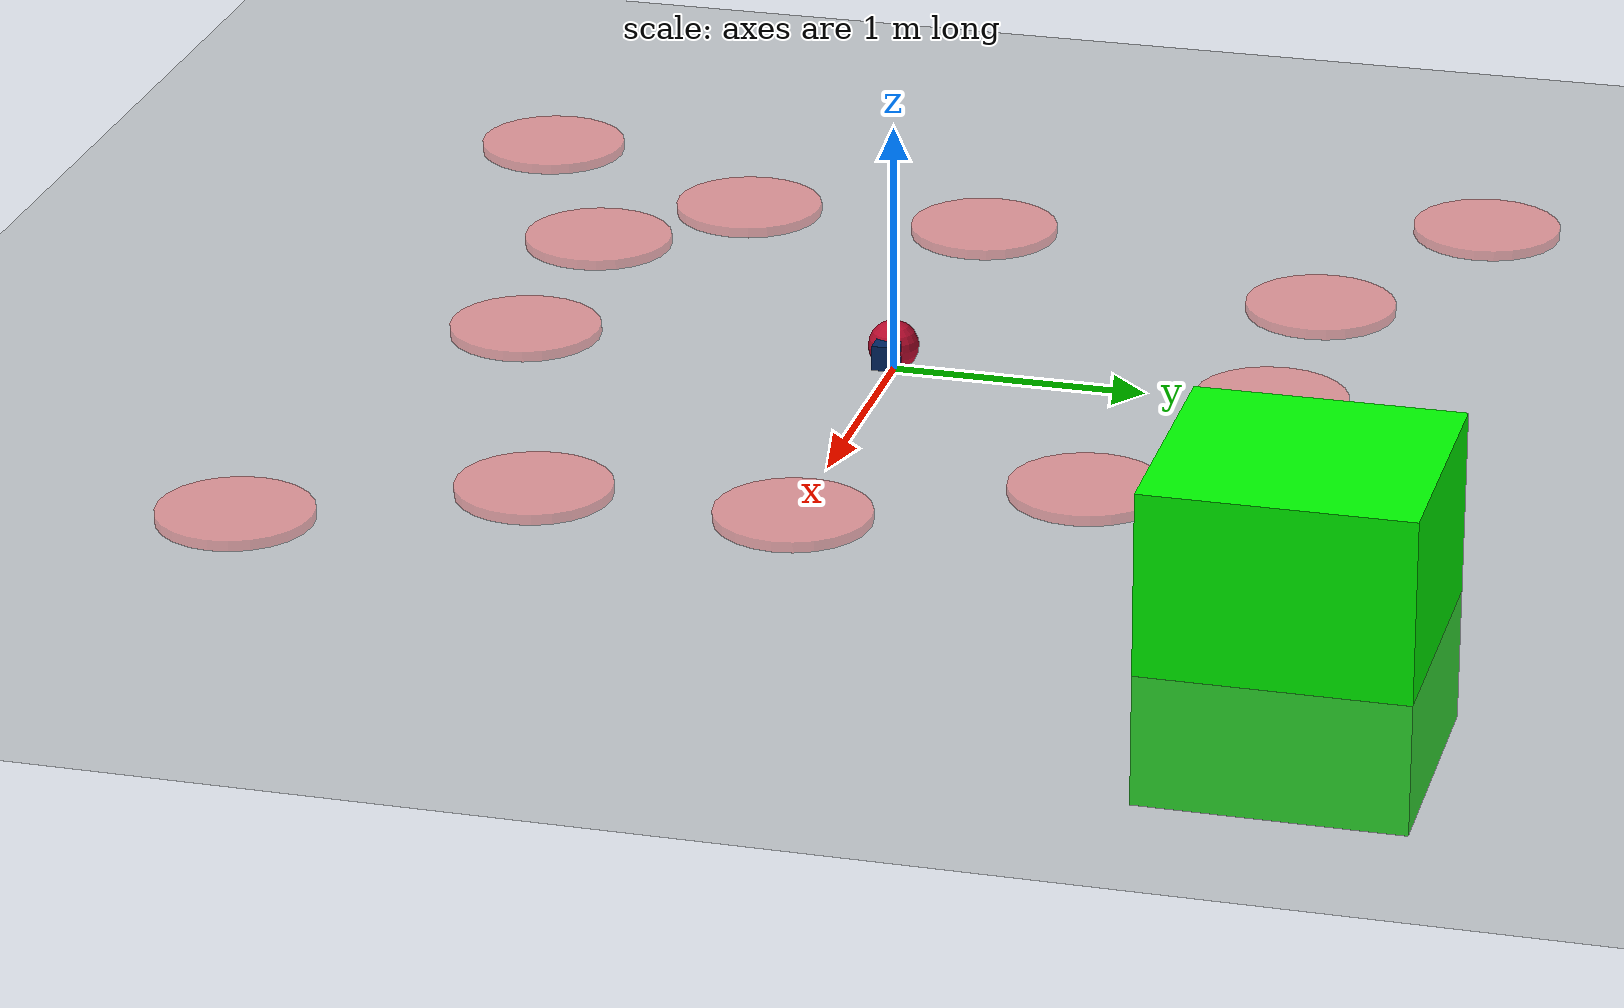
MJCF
<mujoco model="point_hazard_goal">
    <include file="point.xml"/>

    <asset>
        <material name="hazard" rgba="0.9 0.3 0.3 1"/>
        <material name="goal" rgba="0.3 0.9 0.3 1"/>
        <material name="hazard_cylinder" rgba="0.9 0.3 0.3 0.5"/>
    </asset>

    <worldbody>
        <!-- Goal (green box) -->
        <body name="goal" pos="2 2 0.09" mocap="true">
            <geom type="box" name="goal" size="0.5 0.5 0.6" condim="3"
                  friction="1 .03 .003" rgba="0 1 0 1" contype="2" conaffinity="1" solref="0.01 1"/>
        </body>

        <!-- Hazards (semi-transparent flat cylinders with no collision) -->
        <body name="hazard1" pos="-2 2 0.02" mocap="true">
            <geom type="cylinder" name="hazard1" size="0.3 0.02" rgba="0.9 0.3 0.3 0.5" contype="0" conaffinity="0"/>
        </body>

        <body name="hazard2" pos="2 -2 0.02" mocap="true">
            <geom type="cylinder" name="hazard2" size="0.3 0.02" rgba="0.9 0.3 0.3 0.5" contype="0" conaffinity="0"/>
        </body>

        <body name="hazard3" pos="-2 -2 0.02" mocap="true">
            <geom type="cylinder" name="hazard3" size="0.3 0.02" rgba="0.9 0.3 0.3 0.5" contype="0" conaffinity="0"/>
        </body>

        <body name="hazard4" pos="0 1.5 0.02" mocap="true">
            <geom type="cylinder" name="hazard4" size="0.3 0.02" rgba="0.9 0.3 0.3 0.5" contype="0" conaffinity="0"/>
        </body>

        <body name="hazard5" pos="1.5 0 0.02" mocap="true">
            <geom type="cylinder" name="hazard5" size="0.3 0.02" rgba="0.9 0.3 0.3 0.5" contype="0" conaffinity="0"/>
        </body>

        <body name="hazard6" pos="-1.5 0 0.02" mocap="true">
            <geom type="cylinder" name="hazard6" size="0.3 0.02" rgba="0.9 0.3 0.3 0.5" contype="0" conaffinity="0"/>
        </body>

        <body name="hazard7" pos="0 -1.5 0.02" mocap="true">
            <geom type="cylinder" name="hazard7" size="0.3 0.02" rgba="0.9 0.3 0.3 0.5" contype="0" conaffinity="0"/>
        </body>

        <body name="hazard8" pos="1 1 0.02" mocap="true">
            <geom type="cylinder" name="hazard8" size="0.3 0.02" rgba="0.9 0.3 0.3 0.5" contype="0" conaffinity="0"/>
        </body>

        <body name="hazard9" pos="-1 1.5 0.02" mocap="true">
            <geom type="cylinder" name="hazard9" size="0.3 0.02" rgba="0.9 0.3 0.3 0.5" contype="0" conaffinity="0"/>
        </body>

        <body name="hazard10" pos="1.5 -1 0.02" mocap="true">
            <geom type="cylinder" name="hazard10" size="0.3 0.02" rgba="0.9 0.3 0.3 0.5" contype="0" conaffinity="0"/>
        </body>

        <body name="hazard11" pos="-1.5 -1 0.02" mocap="true">
            <geom type="cylinder" name="hazard11" size="0.3 0.02" rgba="0.9 0.3 0.3 0.5" contype="0" conaffinity="0"/>
        </body>

        <body name="hazard12" pos="-1 -1.5 0.02" mocap="true">
            <geom type="cylinder" name="hazard12" size="0.3 0.02" rgba="0.9 0.3 0.3 0.5" contype="0" conaffinity="0"/>
        </body>
    </worldbody>
</mujoco>

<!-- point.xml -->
<mujoco>
  <size njmax="3000" nconmax="1000"/>
  <option timestep="0.002"/>
  <visual>
    <headlight ambient="0.5 0.5 0.5" diffuse="0.9 0.9 0.9" specular="0.2 0.2 0.2"/>
    <map znear="0.01" zfar="30"/>
  </visual>
  <statistic meansize="0.23" extent="3.96"/>
  <default>
    <geom condim="6" density="1"/>
    <joint damping=".001"/>
    <motor ctrlrange="-1 1" ctrllimited="true" forcerange="-.05 .05" forcelimited="true"/>
    <velocity ctrlrange="-1 1" ctrllimited="true" forcerange="-.05 .05" forcelimited="true"/>
    <site size="0.032" type="sphere"/>
  </default>
  <worldbody>
    <geom name="floor" type="plane" size="10 10 0.1" condim="6" />
    <camera name="fixedfar" pos="0 -5 5" zaxis="0 -1 1" mode="fixed"/>
    <body name="agent" pos="0 0 .1">
      <camera name="vision" pos="0 0 .15" xyaxes="0 -1 0 .4 0 1" fovy="90"/>
      <camera name="vision_back" pos="0 0 .15" xyaxes="0 1 0 0 0 1" fovy="90"/>
      <joint type="slide" axis="1 0 0" name="x" damping="0.01"/>
      <joint type="slide" axis="0 1 0" name="y" damping="0.01"/>
      <joint type="hinge" axis="0 0 1" name="z" damping="0.005"/>
      <geom name="agent" type="sphere" size=".1" friction="1 0.01 0.01" rgba="0.7412 0.0431 0.1843 1"/>
      <geom name="pointarrow" pos="0.1 0 0" size="0.05 0.05 0.05" type="box" rgba="0.0039 0.1529 0.3961 1"/>
      <site name="agent" rgba="1 0 0 .1"/>
    </body>
  </worldbody>
  <sensor>
    <!-- Used for observation -->
    <accelerometer site="agent" name="accelerometer"/>
    <velocimeter site="agent" name="velocimeter"/>
    <gyro site="agent" name="gyro"/>
    <magnetometer site="agent" name="magnetometer"/>

    <!-- Used for intrinsic constraints -->
    <subtreecom body="agent" name="subtreecom"/>
    <subtreelinvel body="agent" name="subtreelinvel"/>
    <subtreeangmom body="agent" name="subtreeangmom"/>
  </sensor>
  <actuator>
    <motor gear="0.3 0 0 0 0 0" site="agent" name="x"/>
    <velocity gear="0.3" jointinparent="z" name="z"/>
  </actuator>
</mujoco>
